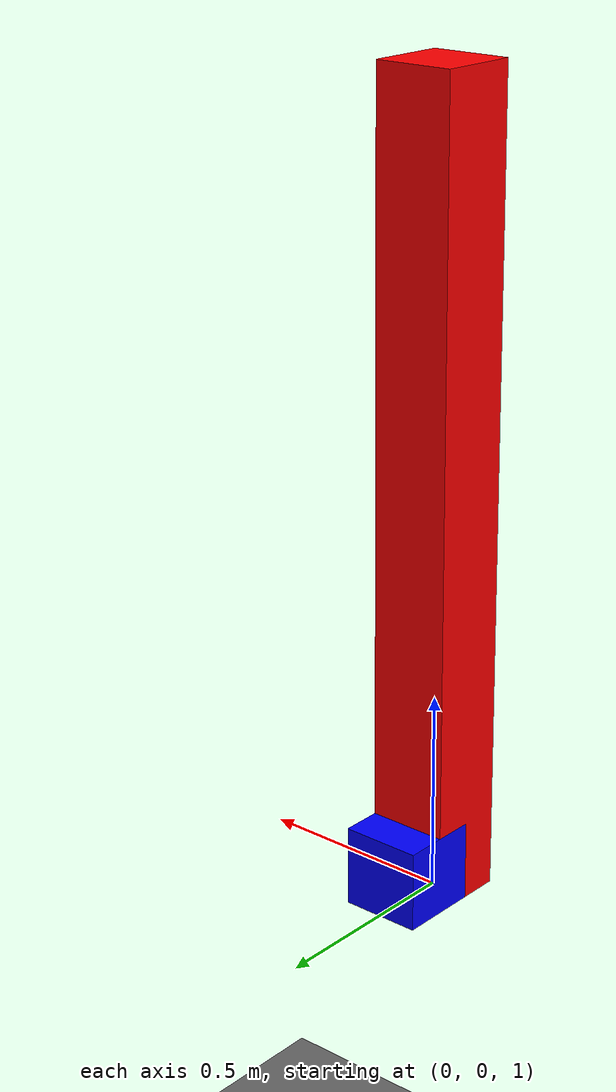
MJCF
<!-- TODO -->
<!-- (1) correct mass/inertial matricies (just weight for now) -->
<mujoco model="pendulum_3d">
  <compiler angle="radian" />
  <size njmax="500" nconmax="100"/>
  <option timestep="0.002" integrator="Euler"/>
  <option>
      <flag multiccd="enable"/>
  </option>
  <asset>
    <texture name="texplane0" type="2d" builtin="checker" rgb1="0 0 0" rgb2="0.8 0.8 0.8" width="100" height="100" mark="cross" markrgb=".8 .8 .8"/>
    <material name="matplane0" reflectance="0.3" texture="texplane0" texrepeat="1 1" texuniform="true"/>
  </asset>
  <visual>
    <headlight ambient="0.6 0.6 0.6" diffuse="0.5 0.5 0.5" specular="0.2 0.2 0.2"/>
    <map znear="0.001" />
  </visual>
  <worldbody>
    <geom contype="1" friction="1 0 0.01" name="floor0" pos="0 0 0" euler="0 0 0" size="10 10 0.01" type="box" material="matplane0" condim="6"/>

    <body name="fix_box" pos="0.0 0.0 2" euler="0 0 0.0">
      <body name="pendulum" pos="0 0.0 0.">
        <joint name="joint0" type="hinge" axis="1 0 0" limited="false" pos="0.0 0.0 1."
                   frictionloss="0.01" damping="0.1" armature="0.0002"  />
        <joint name="joint1" type="hinge" axis="0 1 0" limited="false" pos="0.0 0.0 1."
                   frictionloss="0.01" damping="0.1" armature="0.0002"  />
        <geom name="pendulum" type="box" contype="1" conaffinity="1" mass="0.5"
                  size="0.1 0.1 1.0"  rgba="1 0 0 1.0"/>
        <body name="head" pos="0 0.1 -0.9">
          <geom name="head" type="box" contype="1" conaffinity="1" mass="0.0"
                  size="0.1 0.1 0.1"  rgba="0 0 1 1.0"/>
        </body>
      </body>
    </body>
  </worldbody>
    <actuator>
      <motor gear="1" forcelimited="true" forcerange="-10 10" name="joint0_motor" joint="joint0"/>
      <motor gear="1" forcelimited="true" forcerange="-10 10" name="joint1_motor" joint="joint1"/>
  </actuator>
</mujoco>
